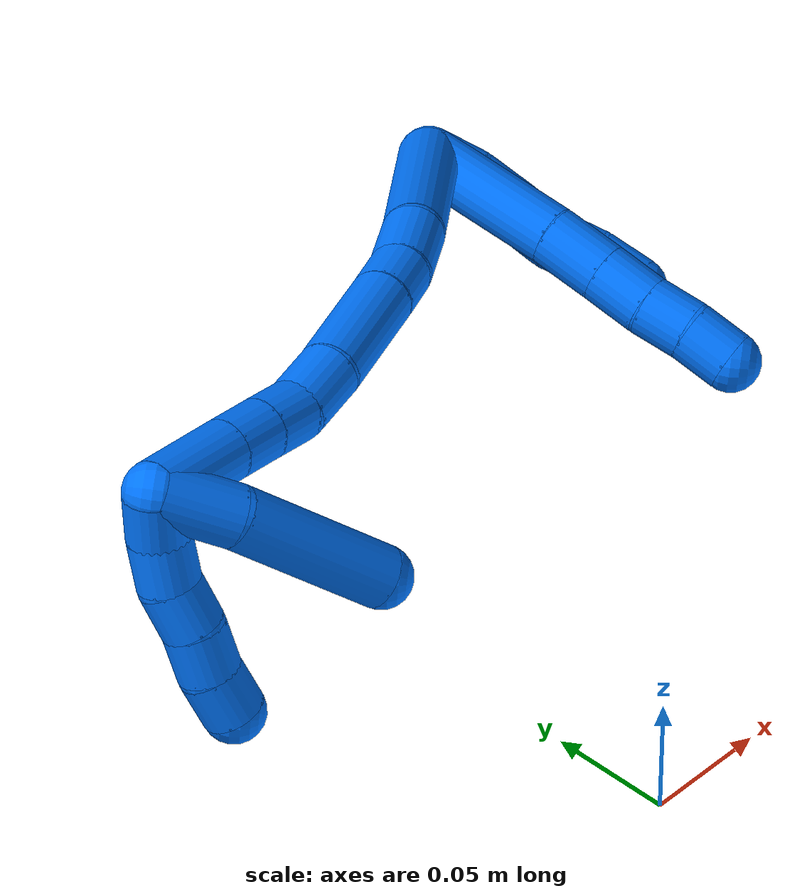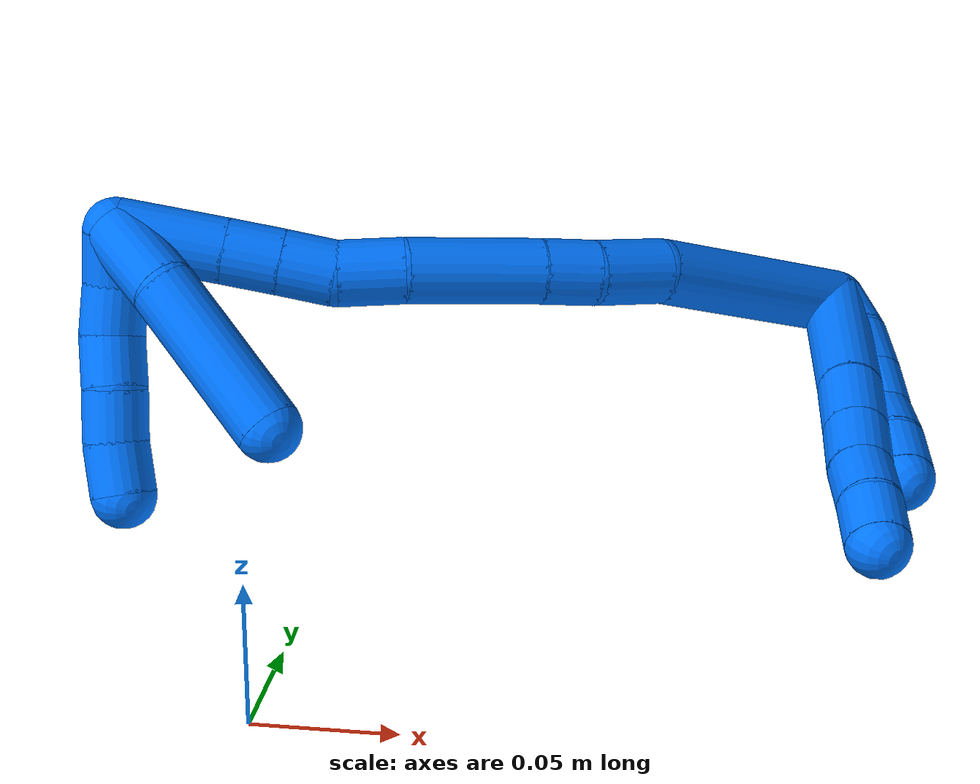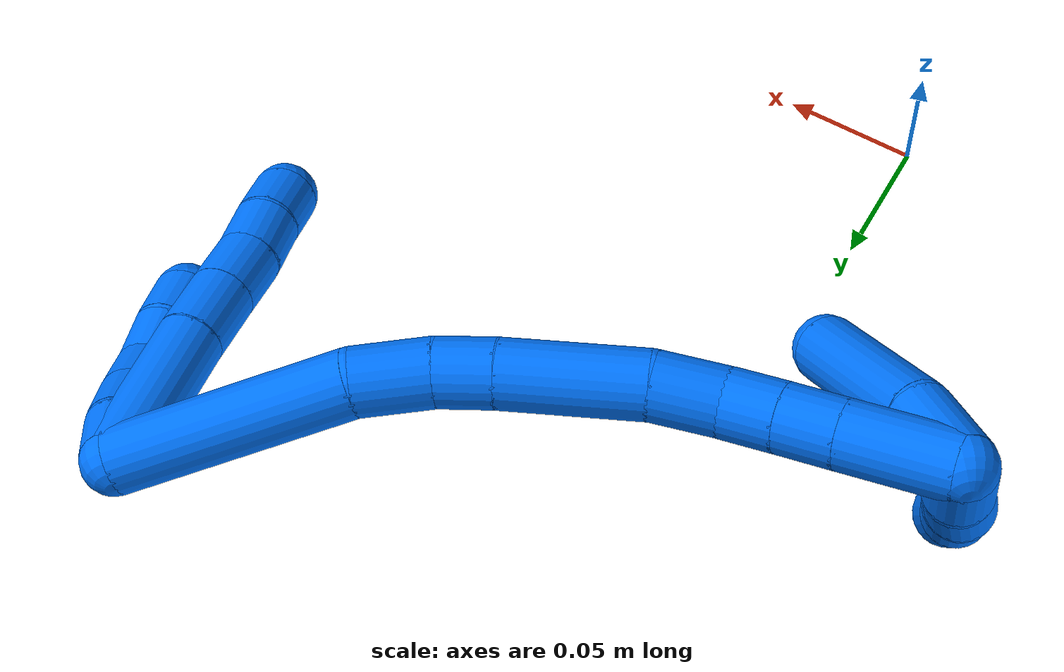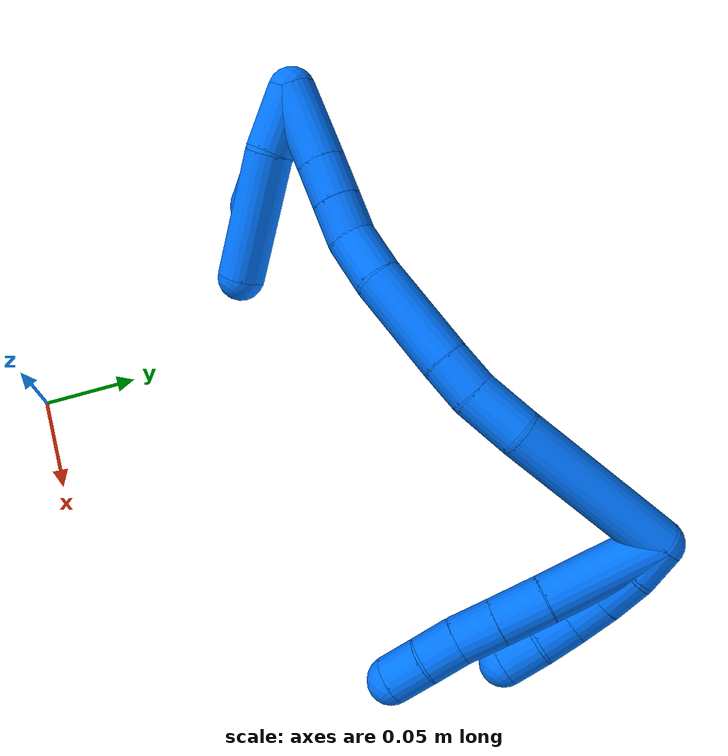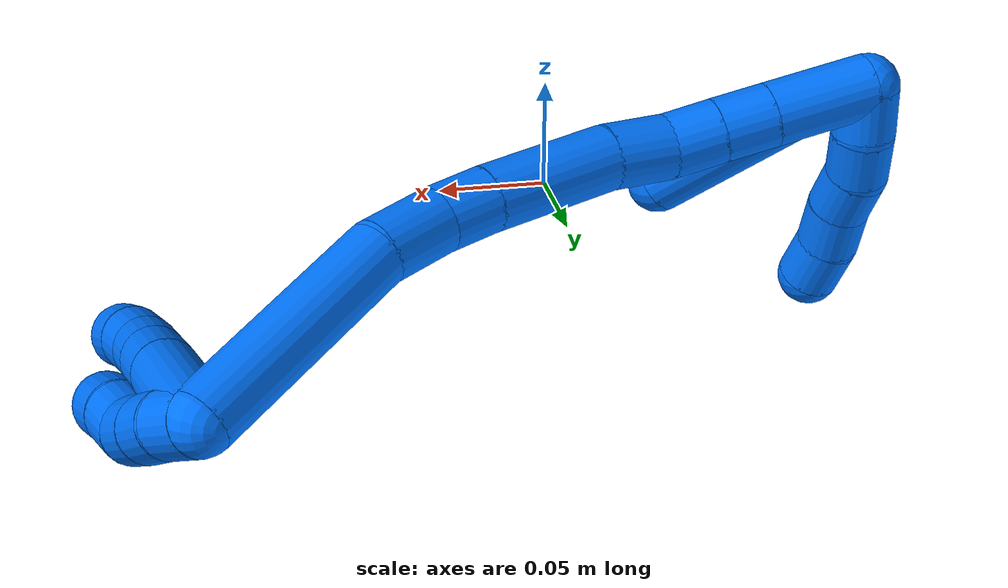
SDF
<sdf version="1.7">
 <world name="default">
  <model name="14">
   <static>0</static>
   <link name="14">
    <collision name="collision-cylinder-e_1_2_8">
     <pose>-0.013223 0.006947 0.026847 -0.253205 -0.444935 0.05757</pose>
     <geometry><cylinder><radius>0.0125</radius><length>0.061444</length></cylinder></geometry>
     <surface>
      <friction><ode><mu>1.16</mu><mu2>1.16</mu2><slip1>0</slip1><slip2>0</slip2></ode></friction>
      <contact><ode><kp>1e+06</kp><kd>1</kd><max_vel>0</max_vel><min_depth>0.001</min_depth></ode></contact>
     </surface>
    </collision>
    <visual name="visual-cylinder-e_1_2_8">
     <pose>-0.013223 0.006947 0.026847 -0.253205 -0.444935 0.05757</pose>
     <geometry><cylinder><radius>0.0125</radius><length>0.061444</length></cylinder></geometry>
     <material><ambient>0 0.462745 1 1</ambient></material>
    </visual>
    <collision name="collision-cylinder-e_2_8_9">
     <pose>-0.032687 0.01634 0.06494 -0.214219 -0.496912 0.054542</pose>
     <geometry><cylinder><radius>0.0125</radius><length>0.026185</length></cylinder></geometry>
     <surface>
      <friction><ode><mu>1.16</mu><mu2>1.16</mu2><slip1>0</slip1><slip2>0</slip2></ode></friction>
      <contact><ode><kp>1e+06</kp><kd>1</kd><max_vel>0</max_vel><min_depth>0.001</min_depth></ode></contact>
     </surface>
    </collision>
    <visual name="visual-cylinder-e_2_8_9">
     <pose>-0.032687 0.01634 0.06494 -0.214219 -0.496912 0.054542</pose>
     <geometry><cylinder><radius>0.0125</radius><length>0.026185</length></cylinder></geometry>
     <material><ambient>0 0.462745 1 1</ambient></material>
    </visual>
    <collision name="collision-cylinder-e_3_9_10">
     <pose>-0.04439 0.020848 0.085703 -0.213303 -0.511106 0.055926</pose>
     <geometry><cylinder><radius>0.0125</radius><length>0.02233</length></cylinder></geometry>
     <surface>
      <friction><ode><mu>1.16</mu><mu2>1.16</mu2><slip1>0</slip1><slip2>0</slip2></ode></friction>
      <contact><ode><kp>1e+06</kp><kd>1</kd><max_vel>0</max_vel><min_depth>0.001</min_depth></ode></contact>
     </surface>
    </collision>
    <visual name="visual-cylinder-e_3_9_10">
     <pose>-0.04439 0.020848 0.085703 -0.213303 -0.511106 0.055926</pose>
     <geometry><cylinder><radius>0.0125</radius><length>0.02233</length></cylinder></geometry>
     <material><ambient>0 0.462745 1 1</ambient></material>
    </visual>
    <collision name="collision-cylinder-e_4_10_11">
     <pose>-0.053895 0.024513 0.104228 -0.1761 -0.416258 0.037282</pose>
     <geometry><cylinder><radius>0.0125</radius><length>0.020007</length></cylinder></geometry>
     <surface>
      <friction><ode><mu>1.16</mu><mu2>1.16</mu2><slip1>0</slip1><slip2>0</slip2></ode></friction>
      <contact><ode><kp>1e+06</kp><kd>1</kd><max_vel>0</max_vel><min_depth>0.001</min_depth></ode></contact>
     </surface>
    </collision>
    <visual name="visual-cylinder-e_4_10_11">
     <pose>-0.053895 0.024513 0.104228 -0.1761 -0.416258 0.037282</pose>
     <geometry><cylinder><radius>0.0125</radius><length>0.020007</length></cylinder></geometry>
     <material><ambient>0 0.462745 1 1</ambient></material>
    </visual>
    <collision name="collision-cylinder-e_5_11_6">
     <pose>-0.062859 0.026739 0.12194 -0.071504 -0.513261 0.018771</pose>
     <geometry><cylinder><radius>0.0125</radius><length>0.020034</length></cylinder></geometry>
     <surface>
      <friction><ode><mu>1.16</mu><mu2>1.16</mu2><slip1>0</slip1><slip2>0</slip2></ode></friction>
      <contact><ode><kp>1e+06</kp><kd>1</kd><max_vel>0</max_vel><min_depth>0.001</min_depth></ode></contact>
     </surface>
    </collision>
    <visual name="visual-cylinder-e_5_11_6">
     <pose>-0.062859 0.026739 0.12194 -0.071504 -0.513261 0.018771</pose>
     <geometry><cylinder><radius>0.0125</radius><length>0.020034</length></cylinder></geometry>
     <material><ambient>0 0.462745 1 1</ambient></material>
    </visual>
    <collision name="collision-cylinder-e_1_2_12">
     <pose>-0.00309 -0.001944 0.00931 0.205894 -0.314094 -0.032716</pose>
     <geometry><cylinder><radius>0.0125</radius><length>0.02</length></cylinder></geometry>
     <surface>
      <friction><ode><mu>1.16</mu><mu2>1.16</mu2><slip1>0</slip1><slip2>0</slip2></ode></friction>
      <contact><ode><kp>1e+06</kp><kd>1</kd><max_vel>0</max_vel><min_depth>0.001</min_depth></ode></contact>
     </surface>
    </collision>
    <visual name="visual-cylinder-e_1_2_12">
     <pose>-0.00309 -0.001944 0.00931 0.205894 -0.314094 -0.032716</pose>
     <geometry><cylinder><radius>0.0125</radius><length>0.02</length></cylinder></geometry>
     <material><ambient>0 0.462745 1 1</ambient></material>
    </visual>
    <collision name="collision-cylinder-e_2_12_13">
     <pose>-0.010832 -0.005397 0.027342 0.171227 -0.483997 -0.042362</pose>
     <geometry><cylinder><radius>0.0125</radius><length>0.02</length></cylinder></geometry>
     <surface>
      <friction><ode><mu>1.16</mu><mu2>1.16</mu2><slip1>0</slip1><slip2>0</slip2></ode></friction>
      <contact><ode><kp>1e+06</kp><kd>1</kd><max_vel>0</max_vel><min_depth>0.001</min_depth></ode></contact>
     </surface>
    </collision>
    <visual name="visual-cylinder-e_2_12_13">
     <pose>-0.010832 -0.005397 0.027342 0.171227 -0.483997 -0.042362</pose>
     <geometry><cylinder><radius>0.0125</radius><length>0.02</length></cylinder></geometry>
     <material><ambient>0 0.462745 1 1</ambient></material>
    </visual>
    <collision name="collision-cylinder-e_3_13_14">
     <pose>-0.020413 -0.007786 0.044721 0.101356 -0.515247 -0.026726</pose>
     <geometry><cylinder><radius>0.0125</radius><length>0.02</length></cylinder></geometry>
     <surface>
      <friction><ode><mu>1.16</mu><mu2>1.16</mu2><slip1>0</slip1><slip2>0</slip2></ode></friction>
      <contact><ode><kp>1e+06</kp><kd>1</kd><max_vel>0</max_vel><min_depth>0.001</min_depth></ode></contact>
     </surface>
    </collision>
    <visual name="visual-cylinder-e_3_13_14">
     <pose>-0.020413 -0.007786 0.044721 0.101356 -0.515247 -0.026726</pose>
     <geometry><cylinder><radius>0.0125</radius><length>0.02</length></cylinder></geometry>
     <material><ambient>0 0.462745 1 1</ambient></material>
    </visual>
    <collision name="collision-cylinder-e_4_14_15">
     <pose>-0.02854 -0.006691 0.062644 -0.209982 -0.325646 0.034619</pose>
     <geometry><cylinder><radius>0.0125</radius><length>0.02</length></cylinder></geometry>
     <surface>
      <friction><ode><mu>1.16</mu><mu2>1.16</mu2><slip1>0</slip1><slip2>0</slip2></ode></friction>
      <contact><ode><kp>1e+06</kp><kd>1</kd><max_vel>0</max_vel><min_depth>0.001</min_depth></ode></contact>
     </surface>
    </collision>
    <visual name="visual-cylinder-e_4_14_15">
     <pose>-0.02854 -0.006691 0.062644 -0.209982 -0.325646 0.034619</pose>
     <geometry><cylinder><radius>0.0125</radius><length>0.02</length></cylinder></geometry>
     <material><ambient>0 0.462745 1 1</ambient></material>
    </visual>
    <collision name="collision-cylinder-e_5_15_5">
     <pose>-0.036152 -0.003678 0.080824 -0.115938 -0.457004 0.026992</pose>
     <geometry><cylinder><radius>0.0125</radius><length>0.02</length></cylinder></geometry>
     <surface>
      <friction><ode><mu>1.16</mu><mu2>1.16</mu2><slip1>0</slip1><slip2>0</slip2></ode></friction>
      <contact><ode><kp>1e+06</kp><kd>1</kd><max_vel>0</max_vel><min_depth>0.001</min_depth></ode></contact>
     </surface>
    </collision>
    <visual name="visual-cylinder-e_5_15_5">
     <pose>-0.036152 -0.003678 0.080824 -0.115938 -0.457004 0.026992</pose>
     <geometry><cylinder><radius>0.0125</radius><length>0.02</length></cylinder></geometry>
     <material><ambient>0 0.462745 1 1</ambient></material>
    </visual>
    <collision name="collision-cylinder-e_1_2_16">
     <pose>-0.019963 0.040064 0.000464 -1.55922 -0.462249 0.457111</pose>
     <geometry><cylinder><radius>0.0125</radius><length>0.089529</length></cylinder></geometry>
     <surface>
      <friction><ode><mu>1.16</mu><mu2>1.16</mu2><slip1>0</slip1><slip2>0</slip2></ode></friction>
      <contact><ode><kp>1e+06</kp><kd>1</kd><max_vel>0</max_vel><min_depth>0.001</min_depth></ode></contact>
     </surface>
    </collision>
    <visual name="visual-cylinder-e_1_2_16">
     <pose>-0.019963 0.040064 0.000464 -1.55922 -0.462249 0.457111</pose>
     <geometry><cylinder><radius>0.0125</radius><length>0.089529</length></cylinder></geometry>
     <material><ambient>0 0.462745 1 1</ambient></material>
    </visual>
    <collision name="collision-cylinder-e_2_16_17">
     <pose>-0.048862 0.091292 -0.000169 -1.66877 -0.672638 0.736147</pose>
     <geometry><cylinder><radius>0.0125</radius><length>0.028682</length></cylinder></geometry>
     <surface>
      <friction><ode><mu>1.16</mu><mu2>1.16</mu2><slip1>0</slip1><slip2>0</slip2></ode></friction>
      <contact><ode><kp>1e+06</kp><kd>1</kd><max_vel>0</max_vel><min_depth>0.001</min_depth></ode></contact>
     </surface>
    </collision>
    <visual name="visual-cylinder-e_2_16_17">
     <pose>-0.048862 0.091292 -0.000169 -1.66877 -0.672638 0.736147</pose>
     <geometry><cylinder><radius>0.0125</radius><length>0.028682</length></cylinder></geometry>
     <material><ambient>0 0.462745 1 1</ambient></material>
    </visual>
    <collision name="collision-cylinder-e_3_17_18">
     <pose>-0.064315 0.110488 -0.003796 -1.87588 -0.658686 0.872113</pose>
     <geometry><cylinder><radius>0.0125</radius><length>0.021298</length></cylinder></geometry>
     <surface>
      <friction><ode><mu>1.16</mu><mu2>1.16</mu2><slip1>0</slip1><slip2>0</slip2></ode></friction>
      <contact><ode><kp>1e+06</kp><kd>1</kd><max_vel>0</max_vel><min_depth>0.001</min_depth></ode></contact>
     </surface>
    </collision>
    <visual name="visual-cylinder-e_3_17_18">
     <pose>-0.064315 0.110488 -0.003796 -1.87588 -0.658686 0.872113</pose>
     <geometry><cylinder><radius>0.0125</radius><length>0.021298</length></cylinder></geometry>
     <material><ambient>0 0.462745 1 1</ambient></material>
    </visual>
    <collision name="collision-cylinder-e_4_18_19">
     <pose>-0.087517 0.137308 -0.013469 -1.93412 -0.692778 0.964349</pose>
     <geometry><cylinder><radius>0.0125</radius><length>0.052244</length></cylinder></geometry>
     <surface>
      <friction><ode><mu>1.16</mu><mu2>1.16</mu2><slip1>0</slip1><slip2>0</slip2></ode></friction>
      <contact><ode><kp>1e+06</kp><kd>1</kd><max_vel>0</max_vel><min_depth>0.001</min_depth></ode></contact>
     </surface>
    </collision>
    <visual name="visual-cylinder-e_4_18_19">
     <pose>-0.087517 0.137308 -0.013469 -1.93412 -0.692778 0.964349</pose>
     <geometry><cylinder><radius>0.0125</radius><length>0.052244</length></cylinder></geometry>
     <material><ambient>0 0.462745 1 1</ambient></material>
    </visual>
    <collision name="collision-cylinder-e_5_19_20">
     <pose>-0.112949 0.164007 -0.025483 -2.12271 -0.755417 1.23514</pose>
     <geometry><cylinder><radius>0.0125</radius><length>0.02552</length></cylinder></geometry>
     <surface>
      <friction><ode><mu>1.16</mu><mu2>1.16</mu2><slip1>0</slip1><slip2>0</slip2></ode></friction>
      <contact><ode><kp>1e+06</kp><kd>1</kd><max_vel>0</max_vel><min_depth>0.001</min_depth></ode></contact>
     </surface>
    </collision>
    <visual name="visual-cylinder-e_5_19_20">
     <pose>-0.112949 0.164007 -0.025483 -2.12271 -0.755417 1.23514</pose>
     <geometry><cylinder><radius>0.0125</radius><length>0.02552</length></cylinder></geometry>
     <material><ambient>0 0.462745 1 1</ambient></material>
    </visual>
    <collision name="collision-cylinder-e_6_20_21">
     <pose>-0.1267 0.179125 -0.035783 -2.21638 -0.50618 0.956867</pose>
     <geometry><cylinder><radius>0.0125</radius><length>0.020637</length></cylinder></geometry>
     <surface>
      <friction><ode><mu>1.16</mu><mu2>1.16</mu2><slip1>0</slip1><slip2>0</slip2></ode></friction>
      <contact><ode><kp>1e+06</kp><kd>1</kd><max_vel>0</max_vel><min_depth>0.001</min_depth></ode></contact>
     </surface>
    </collision>
    <visual name="visual-cylinder-e_6_20_21">
     <pose>-0.1267 0.179125 -0.035783 -2.21638 -0.50618 0.956867</pose>
     <geometry><cylinder><radius>0.0125</radius><length>0.020637</length></cylinder></geometry>
     <material><ambient>0 0.462745 1 1</ambient></material>
    </visual>
    <collision name="collision-cylinder-e_7_21_22">
     <pose>-0.136971 0.193654 -0.046816 -2.22411 -0.519168 0.986746</pose>
     <geometry><cylinder><radius>0.0125</radius><length>0.021235</length></cylinder></geometry>
     <surface>
      <friction><ode><mu>1.16</mu><mu2>1.16</mu2><slip1>0</slip1><slip2>0</slip2></ode></friction>
      <contact><ode><kp>1e+06</kp><kd>1</kd><max_vel>0</max_vel><min_depth>0.001</min_depth></ode></contact>
     </surface>
    </collision>
    <visual name="visual-cylinder-e_7_21_22">
     <pose>-0.136971 0.193654 -0.046816 -2.22411 -0.519168 0.986746</pose>
     <geometry><cylinder><radius>0.0125</radius><length>0.021235</length></cylinder></geometry>
     <material><ambient>0 0.462745 1 1</ambient></material>
    </visual>
    <collision name="collision-cylinder-e_8_22_1">
     <pose>-0.152502 0.215056 -0.063078 -2.21869 -0.526405 0.993175</pose>
     <geometry><cylinder><radius>0.0125</radius><length>0.040853</length></cylinder></geometry>
     <surface>
      <friction><ode><mu>1.16</mu><mu2>1.16</mu2><slip1>0</slip1><slip2>0</slip2></ode></friction>
      <contact><ode><kp>1e+06</kp><kd>1</kd><max_vel>0</max_vel><min_depth>0.001</min_depth></ode></contact>
     </surface>
    </collision>
    <visual name="visual-cylinder-e_8_22_1">
     <pose>-0.152502 0.215056 -0.063078 -2.21869 -0.526405 0.993175</pose>
     <geometry><cylinder><radius>0.0125</radius><length>0.040853</length></cylinder></geometry>
     <material><ambient>0 0.462745 1 1</ambient></material>
    </visual>
    <collision name="collision-cylinder-e_1_1_23">
     <pose>-0.170268 0.222675 -0.072352 1.35979 -0.848611 -0.700357</pose>
     <geometry><cylinder><radius>0.0125</radius><length>0.02</length></cylinder></geometry>
     <surface>
      <friction><ode><mu>1.16</mu><mu2>1.16</mu2><slip1>0</slip1><slip2>0</slip2></ode></friction>
      <contact><ode><kp>1e+06</kp><kd>1</kd><max_vel>0</max_vel><min_depth>0.001</min_depth></ode></contact>
     </surface>
    </collision>
    <visual name="visual-cylinder-e_1_1_23">
     <pose>-0.170268 0.222675 -0.072352 1.35979 -0.848611 -0.700357</pose>
     <geometry><cylinder><radius>0.0125</radius><length>0.02</length></cylinder></geometry>
     <material><ambient>0 0.462745 1 1</ambient></material>
    </visual>
    <collision name="collision-cylinder-e_2_23_24">
     <pose>-0.185851 0.21102 -0.068176 1.07743 -0.940537 -0.58989</pose>
     <geometry><cylinder><radius>0.0125</radius><length>0.02</length></cylinder></geometry>
     <surface>
      <friction><ode><mu>1.16</mu><mu2>1.16</mu2><slip1>0</slip1><slip2>0</slip2></ode></friction>
      <contact><ode><kp>1e+06</kp><kd>1</kd><max_vel>0</max_vel><min_depth>0.001</min_depth></ode></contact>
     </surface>
    </collision>
    <visual name="visual-cylinder-e_2_23_24">
     <pose>-0.185851 0.21102 -0.068176 1.07743 -0.940537 -0.58989</pose>
     <geometry><cylinder><radius>0.0125</radius><length>0.02</length></cylinder></geometry>
     <material><ambient>0 0.462745 1 1</ambient></material>
    </visual>
    <collision name="collision-cylinder-e_3_24_25">
     <pose>-0.201005 0.201069 -0.060163 0.739224 -0.786031 -0.318513</pose>
     <geometry><cylinder><radius>0.0125</radius><length>0.02</length></cylinder></geometry>
     <surface>
      <friction><ode><mu>1.16</mu><mu2>1.16</mu2><slip1>0</slip1><slip2>0</slip2></ode></friction>
      <contact><ode><kp>1e+06</kp><kd>1</kd><max_vel>0</max_vel><min_depth>0.001</min_depth></ode></contact>
     </surface>
    </collision>
    <visual name="visual-cylinder-e_3_24_25">
     <pose>-0.201005 0.201069 -0.060163 0.739224 -0.786031 -0.318513</pose>
     <geometry><cylinder><radius>0.0125</radius><length>0.02</length></cylinder></geometry>
     <material><ambient>0 0.462745 1 1</ambient></material>
    </visual>
    <collision name="collision-cylinder-e_4_25_26">
     <pose>-0.215577 0.190883 -0.05115 0.960911 -0.847507 -0.461812</pose>
     <geometry><cylinder><radius>0.0125</radius><length>0.02</length></cylinder></geometry>
     <surface>
      <friction><ode><mu>1.16</mu><mu2>1.16</mu2><slip1>0</slip1><slip2>0</slip2></ode></friction>
      <contact><ode><kp>1e+06</kp><kd>1</kd><max_vel>0</max_vel><min_depth>0.001</min_depth></ode></contact>
     </surface>
    </collision>
    <visual name="visual-cylinder-e_4_25_26">
     <pose>-0.215577 0.190883 -0.05115 0.960911 -0.847507 -0.461812</pose>
     <geometry><cylinder><radius>0.0125</radius><length>0.02</length></cylinder></geometry>
     <material><ambient>0 0.462745 1 1</ambient></material>
    </visual>
    <collision name="collision-cylinder-e_5_26_4">
     <pose>-0.229552 0.179895 -0.042155 0.818635 -0.704859 -0.316437</pose>
     <geometry><cylinder><radius>0.0125</radius><length>0.02</length></cylinder></geometry>
     <surface>
      <friction><ode><mu>1.16</mu><mu2>1.16</mu2><slip1>0</slip1><slip2>0</slip2></ode></friction>
      <contact><ode><kp>1e+06</kp><kd>1</kd><max_vel>0</max_vel><min_depth>0.001</min_depth></ode></contact>
     </surface>
    </collision>
    <visual name="visual-cylinder-e_5_26_4">
     <pose>-0.229552 0.179895 -0.042155 0.818635 -0.704859 -0.316437</pose>
     <geometry><cylinder><radius>0.0125</radius><length>0.02</length></cylinder></geometry>
     <material><ambient>0 0.462745 1 1</ambient></material>
    </visual>
    <collision name="collision-cylinder-e_1_1_27">
     <pose>-0.164705 0.222579 -0.058939 0.41723 -0.119316 -0.025287</pose>
     <geometry><cylinder><radius>0.0125</radius><length>0.032604</length></cylinder></geometry>
     <surface>
      <friction><ode><mu>1.16</mu><mu2>1.16</mu2><slip1>0</slip1><slip2>0</slip2></ode></friction>
      <contact><ode><kp>1e+06</kp><kd>1</kd><max_vel>0</max_vel><min_depth>0.001</min_depth></ode></contact>
     </surface>
    </collision>
    <visual name="visual-cylinder-e_1_1_27">
     <pose>-0.164705 0.222579 -0.058939 0.41723 -0.119316 -0.025287</pose>
     <geometry><cylinder><radius>0.0125</radius><length>0.032604</length></cylinder></geometry>
     <material><ambient>0 0.462745 1 1</ambient></material>
    </visual>
    <collision name="collision-cylinder-e_2_27_3">
     <pose>-0.172931 0.197224 -0.016888 0.60375 -0.187619 -0.058578</pose>
     <geometry><cylinder><radius>0.0125</radius><length>0.067396</length></cylinder></geometry>
     <surface>
      <friction><ode><mu>1.16</mu><mu2>1.16</mu2><slip1>0</slip1><slip2>0</slip2></ode></friction>
      <contact><ode><kp>1e+06</kp><kd>1</kd><max_vel>0</max_vel><min_depth>0.001</min_depth></ode></contact>
     </surface>
    </collision>
    <visual name="visual-cylinder-e_2_27_3">
     <pose>-0.172931 0.197224 -0.016888 0.60375 -0.187619 -0.058578</pose>
     <geometry><cylinder><radius>0.0125</radius><length>0.067396</length></cylinder></geometry>
     <material><ambient>0 0.462745 1 1</ambient></material>
    </visual>
    <collision name="collision-sphere-3">
     <pose>-0.179216 0.178429 0.010366 0 -0 0</pose>
     <geometry><sphere><radius>0.0125</radius></sphere></geometry>
     <surface>
      <friction><ode><mu>1.16</mu><mu2>1.16</mu2><slip1>0</slip1><slip2>0</slip2></ode></friction>
      <contact><ode><kp>1e+06</kp><kd>1</kd><max_vel>0</max_vel><min_depth>0.001</min_depth></ode></contact>
     </surface>
    </collision>
    <visual name="visual-sphere-3">
     <pose>-0.179216 0.178429 0.010366 0 -0 0</pose>
     <geometry><sphere><radius>0.0125</radius></sphere></geometry>
     <material><ambient>0 0.462745 1 1</ambient></material>
    </visual>
    <collision name="collision-sphere-27">
     <pose>-0.166646 0.21602 -0.044141 0 -0 0</pose>
     <geometry><sphere><radius>0.0125</radius></sphere></geometry>
     <surface>
      <friction><ode><mu>1.16</mu><mu2>1.16</mu2><slip1>0</slip1><slip2>0</slip2></ode></friction>
      <contact><ode><kp>1e+06</kp><kd>1</kd><max_vel>0</max_vel><min_depth>0.001</min_depth></ode></contact>
     </surface>
    </collision>
    <visual name="visual-sphere-27">
     <pose>-0.166646 0.21602 -0.044141 0 -0 0</pose>
     <geometry><sphere><radius>0.0125</radius></sphere></geometry>
     <material><ambient>0 0.462745 1 1</ambient></material>
    </visual>
    <collision name="collision-sphere-4">
     <pose>-0.236032 0.174333 -0.036951 0 -0 0</pose>
     <geometry><sphere><radius>0.0125</radius></sphere></geometry>
     <surface>
      <friction><ode><mu>1.16</mu><mu2>1.16</mu2><slip1>0</slip1><slip2>0</slip2></ode></friction>
      <contact><ode><kp>1e+06</kp><kd>1</kd><max_vel>0</max_vel><min_depth>0.001</min_depth></ode></contact>
     </surface>
    </collision>
    <visual name="visual-sphere-4">
     <pose>-0.236032 0.174333 -0.036951 0 -0 0</pose>
     <geometry><sphere><radius>0.0125</radius></sphere></geometry>
     <material><ambient>0 0.462745 1 1</ambient></material>
    </visual>
    <collision name="collision-sphere-26">
     <pose>-0.223073 0.185457 -0.047359 0 -0 0</pose>
     <geometry><sphere><radius>0.0125</radius></sphere></geometry>
     <surface>
      <friction><ode><mu>1.16</mu><mu2>1.16</mu2><slip1>0</slip1><slip2>0</slip2></ode></friction>
      <contact><ode><kp>1e+06</kp><kd>1</kd><max_vel>0</max_vel><min_depth>0.001</min_depth></ode></contact>
     </surface>
    </collision>
    <visual name="visual-sphere-26">
     <pose>-0.223073 0.185457 -0.047359 0 -0 0</pose>
     <geometry><sphere><radius>0.0125</radius></sphere></geometry>
     <material><ambient>0 0.462745 1 1</ambient></material>
    </visual>
    <collision name="collision-sphere-25">
     <pose>-0.208081 0.196308 -0.054941 0 -0 0</pose>
     <geometry><sphere><radius>0.0125</radius></sphere></geometry>
     <surface>
      <friction><ode><mu>1.16</mu><mu2>1.16</mu2><slip1>0</slip1><slip2>0</slip2></ode></friction>
      <contact><ode><kp>1e+06</kp><kd>1</kd><max_vel>0</max_vel><min_depth>0.001</min_depth></ode></contact>
     </surface>
    </collision>
    <visual name="visual-sphere-25">
     <pose>-0.208081 0.196308 -0.054941 0 -0 0</pose>
     <geometry><sphere><radius>0.0125</radius></sphere></geometry>
     <material><ambient>0 0.462745 1 1</ambient></material>
    </visual>
    <collision name="collision-sphere-24">
     <pose>-0.193929 0.20583 -0.065385 0 -0 0</pose>
     <geometry><sphere><radius>0.0125</radius></sphere></geometry>
     <surface>
      <friction><ode><mu>1.16</mu><mu2>1.16</mu2><slip1>0</slip1><slip2>0</slip2></ode></friction>
      <contact><ode><kp>1e+06</kp><kd>1</kd><max_vel>0</max_vel><min_depth>0.001</min_depth></ode></contact>
     </surface>
    </collision>
    <visual name="visual-sphere-24">
     <pose>-0.193929 0.20583 -0.065385 0 -0 0</pose>
     <geometry><sphere><radius>0.0125</radius></sphere></geometry>
     <material><ambient>0 0.462745 1 1</ambient></material>
    </visual>
    <collision name="collision-sphere-23">
     <pose>-0.177772 0.216211 -0.070967 0 -0 0</pose>
     <geometry><sphere><radius>0.0125</radius></sphere></geometry>
     <surface>
      <friction><ode><mu>1.16</mu><mu2>1.16</mu2><slip1>0</slip1><slip2>0</slip2></ode></friction>
      <contact><ode><kp>1e+06</kp><kd>1</kd><max_vel>0</max_vel><min_depth>0.001</min_depth></ode></contact>
     </surface>
    </collision>
    <visual name="visual-sphere-23">
     <pose>-0.177772 0.216211 -0.070967 0 -0 0</pose>
     <geometry><sphere><radius>0.0125</radius></sphere></geometry>
     <material><ambient>0 0.462745 1 1</ambient></material>
    </visual>
    <collision name="collision-sphere-1">
     <pose>-0.162765 0.229138 -0.073736 0 -0 0</pose>
     <geometry><sphere><radius>0.0125</radius></sphere></geometry>
     <surface>
      <friction><ode><mu>1.16</mu><mu2>1.16</mu2><slip1>0</slip1><slip2>0</slip2></ode></friction>
      <contact><ode><kp>1e+06</kp><kd>1</kd><max_vel>0</max_vel><min_depth>0.001</min_depth></ode></contact>
     </surface>
    </collision>
    <visual name="visual-sphere-1">
     <pose>-0.162765 0.229138 -0.073736 0 -0 0</pose>
     <geometry><sphere><radius>0.0125</radius></sphere></geometry>
     <material><ambient>0 0.462745 1 1</ambient></material>
    </visual>
    <collision name="collision-sphere-22">
     <pose>-0.142239 0.200974 -0.052419 0 -0 0</pose>
     <geometry><sphere><radius>0.0125</radius></sphere></geometry>
     <surface>
      <friction><ode><mu>1.16</mu><mu2>1.16</mu2><slip1>0</slip1><slip2>0</slip2></ode></friction>
      <contact><ode><kp>1e+06</kp><kd>1</kd><max_vel>0</max_vel><min_depth>0.001</min_depth></ode></contact>
     </surface>
    </collision>
    <visual name="visual-sphere-22">
     <pose>-0.142239 0.200974 -0.052419 0 -0 0</pose>
     <geometry><sphere><radius>0.0125</radius></sphere></geometry>
     <material><ambient>0 0.462745 1 1</ambient></material>
    </visual>
    <collision name="collision-sphere-21">
     <pose>-0.131703 0.186333 -0.041213 0 -0 0</pose>
     <geometry><sphere><radius>0.0125</radius></sphere></geometry>
     <surface>
      <friction><ode><mu>1.16</mu><mu2>1.16</mu2><slip1>0</slip1><slip2>0</slip2></ode></friction>
      <contact><ode><kp>1e+06</kp><kd>1</kd><max_vel>0</max_vel><min_depth>0.001</min_depth></ode></contact>
     </surface>
    </collision>
    <visual name="visual-sphere-21">
     <pose>-0.131703 0.186333 -0.041213 0 -0 0</pose>
     <geometry><sphere><radius>0.0125</radius></sphere></geometry>
     <material><ambient>0 0.462745 1 1</ambient></material>
    </visual>
    <collision name="collision-sphere-6">
     <pose>-0.067778 0.027362 0.130644 0 -0 0</pose>
     <geometry><sphere><radius>0.0125</radius></sphere></geometry>
     <surface>
      <friction><ode><mu>1.16</mu><mu2>1.16</mu2><slip1>0</slip1><slip2>0</slip2></ode></friction>
      <contact><ode><kp>1e+06</kp><kd>1</kd><max_vel>0</max_vel><min_depth>0.001</min_depth></ode></contact>
     </surface>
    </collision>
    <visual name="visual-sphere-6">
     <pose>-0.067778 0.027362 0.130644 0 -0 0</pose>
     <geometry><sphere><radius>0.0125</radius></sphere></geometry>
     <material><ambient>0 0.462745 1 1</ambient></material>
    </visual>
    <collision name="collision-sphere-11">
     <pose>-0.05794 0.026115 0.113235 0 -0 0</pose>
     <geometry><sphere><radius>0.0125</radius></sphere></geometry>
     <surface>
      <friction><ode><mu>1.16</mu><mu2>1.16</mu2><slip1>0</slip1><slip2>0</slip2></ode></friction>
      <contact><ode><kp>1e+06</kp><kd>1</kd><max_vel>0</max_vel><min_depth>0.001</min_depth></ode></contact>
     </surface>
    </collision>
    <visual name="visual-sphere-11">
     <pose>-0.05794 0.026115 0.113235 0 -0 0</pose>
     <geometry><sphere><radius>0.0125</radius></sphere></geometry>
     <material><ambient>0 0.462745 1 1</ambient></material>
    </visual>
    <collision name="collision-sphere-10">
     <pose>-0.049851 0.02291 0.09522 0 -0 0</pose>
     <geometry><sphere><radius>0.0125</radius></sphere></geometry>
     <surface>
      <friction><ode><mu>1.16</mu><mu2>1.16</mu2><slip1>0</slip1><slip2>0</slip2></ode></friction>
      <contact><ode><kp>1e+06</kp><kd>1</kd><max_vel>0</max_vel><min_depth>0.001</min_depth></ode></contact>
     </surface>
    </collision>
    <visual name="visual-sphere-10">
     <pose>-0.049851 0.02291 0.09522 0 -0 0</pose>
     <geometry><sphere><radius>0.0125</radius></sphere></geometry>
     <material><ambient>0 0.462745 1 1</ambient></material>
    </visual>
    <collision name="collision-sphere-9">
     <pose>-0.038928 0.018787 0.076186 0 -0 0</pose>
     <geometry><sphere><radius>0.0125</radius></sphere></geometry>
     <surface>
      <friction><ode><mu>1.16</mu><mu2>1.16</mu2><slip1>0</slip1><slip2>0</slip2></ode></friction>
      <contact><ode><kp>1e+06</kp><kd>1</kd><max_vel>0</max_vel><min_depth>0.001</min_depth></ode></contact>
     </surface>
    </collision>
    <visual name="visual-sphere-9">
     <pose>-0.038928 0.018787 0.076186 0 -0 0</pose>
     <geometry><sphere><radius>0.0125</radius></sphere></geometry>
     <material><ambient>0 0.462745 1 1</ambient></material>
    </visual>
    <collision name="collision-sphere-2">
     <geometry><sphere><radius>0.0125</radius></sphere></geometry>
     <surface>
      <friction><ode><mu>1.16</mu><mu2>1.16</mu2><slip1>0</slip1><slip2>0</slip2></ode></friction>
      <contact><ode><kp>1e+06</kp><kd>1</kd><max_vel>0</max_vel><min_depth>0.001</min_depth></ode></contact>
     </surface>
    </collision>
    <visual name="visual-sphere-2">
     <geometry><sphere><radius>0.0125</radius></sphere></geometry>
     <material><ambient>0 0.462745 1 1</ambient></material>
    </visual>
    <collision name="collision-sphere-19">
     <pose>-0.104201 0.156097 -0.020612 0 -0 0</pose>
     <geometry><sphere><radius>0.0125</radius></sphere></geometry>
     <surface>
      <friction><ode><mu>1.16</mu><mu2>1.16</mu2><slip1>0</slip1><slip2>0</slip2></ode></friction>
      <contact><ode><kp>1e+06</kp><kd>1</kd><max_vel>0</max_vel><min_depth>0.001</min_depth></ode></contact>
     </surface>
    </collision>
    <visual name="visual-sphere-19">
     <pose>-0.104201 0.156097 -0.020612 0 -0 0</pose>
     <geometry><sphere><radius>0.0125</radius></sphere></geometry>
     <material><ambient>0 0.462745 1 1</ambient></material>
    </visual>
    <collision name="collision-sphere-8">
     <pose>-0.026446 0.013894 0.053693 0 -0 0</pose>
     <geometry><sphere><radius>0.0125</radius></sphere></geometry>
     <surface>
      <friction><ode><mu>1.16</mu><mu2>1.16</mu2><slip1>0</slip1><slip2>0</slip2></ode></friction>
      <contact><ode><kp>1e+06</kp><kd>1</kd><max_vel>0</max_vel><min_depth>0.001</min_depth></ode></contact>
     </surface>
    </collision>
    <visual name="visual-sphere-8">
     <pose>-0.026446 0.013894 0.053693 0 -0 0</pose>
     <geometry><sphere><radius>0.0125</radius></sphere></geometry>
     <material><ambient>0 0.462745 1 1</ambient></material>
    </visual>
    <collision name="collision-sphere-12">
     <pose>-0.006179 -0.003889 0.01862 0 -0 0</pose>
     <geometry><sphere><radius>0.0125</radius></sphere></geometry>
     <surface>
      <friction><ode><mu>1.16</mu><mu2>1.16</mu2><slip1>0</slip1><slip2>0</slip2></ode></friction>
      <contact><ode><kp>1e+06</kp><kd>1</kd><max_vel>0</max_vel><min_depth>0.001</min_depth></ode></contact>
     </surface>
    </collision>
    <visual name="visual-sphere-12">
     <pose>-0.006179 -0.003889 0.01862 0 -0 0</pose>
     <geometry><sphere><radius>0.0125</radius></sphere></geometry>
     <material><ambient>0 0.462745 1 1</ambient></material>
    </visual>
    <collision name="collision-sphere-13">
     <pose>-0.015486 -0.006905 0.036064 0 -0 0</pose>
     <geometry><sphere><radius>0.0125</radius></sphere></geometry>
     <surface>
      <friction><ode><mu>1.16</mu><mu2>1.16</mu2><slip1>0</slip1><slip2>0</slip2></ode></friction>
      <contact><ode><kp>1e+06</kp><kd>1</kd><max_vel>0</max_vel><min_depth>0.001</min_depth></ode></contact>
     </surface>
    </collision>
    <visual name="visual-sphere-13">
     <pose>-0.015486 -0.006905 0.036064 0 -0 0</pose>
     <geometry><sphere><radius>0.0125</radius></sphere></geometry>
     <material><ambient>0 0.462745 1 1</ambient></material>
    </visual>
    <collision name="collision-sphere-14">
     <pose>-0.025341 -0.008666 0.053378 0 -0 0</pose>
     <geometry><sphere><radius>0.0125</radius></sphere></geometry>
     <surface>
      <friction><ode><mu>1.16</mu><mu2>1.16</mu2><slip1>0</slip1><slip2>0</slip2></ode></friction>
      <contact><ode><kp>1e+06</kp><kd>1</kd><max_vel>0</max_vel><min_depth>0.001</min_depth></ode></contact>
     </surface>
    </collision>
    <visual name="visual-sphere-14">
     <pose>-0.025341 -0.008666 0.053378 0 -0 0</pose>
     <geometry><sphere><radius>0.0125</radius></sphere></geometry>
     <material><ambient>0 0.462745 1 1</ambient></material>
    </visual>
    <collision name="collision-sphere-15">
     <pose>-0.031739 -0.004716 0.071911 0 -0 0</pose>
     <geometry><sphere><radius>0.0125</radius></sphere></geometry>
     <surface>
      <friction><ode><mu>1.16</mu><mu2>1.16</mu2><slip1>0</slip1><slip2>0</slip2></ode></friction>
      <contact><ode><kp>1e+06</kp><kd>1</kd><max_vel>0</max_vel><min_depth>0.001</min_depth></ode></contact>
     </surface>
    </collision>
    <visual name="visual-sphere-15">
     <pose>-0.031739 -0.004716 0.071911 0 -0 0</pose>
     <geometry><sphere><radius>0.0125</radius></sphere></geometry>
     <material><ambient>0 0.462745 1 1</ambient></material>
    </visual>
    <collision name="collision-sphere-5">
     <pose>-0.040564 -0.00264 0.089738 0 -0 0</pose>
     <geometry><sphere><radius>0.0125</radius></sphere></geometry>
     <surface>
      <friction><ode><mu>1.16</mu><mu2>1.16</mu2><slip1>0</slip1><slip2>0</slip2></ode></friction>
      <contact><ode><kp>1e+06</kp><kd>1</kd><max_vel>0</max_vel><min_depth>0.001</min_depth></ode></contact>
     </surface>
    </collision>
    <visual name="visual-sphere-5">
     <pose>-0.040564 -0.00264 0.089738 0 -0 0</pose>
     <geometry><sphere><radius>0.0125</radius></sphere></geometry>
     <material><ambient>0 0.462745 1 1</ambient></material>
    </visual>
    <collision name="collision-sphere-16">
     <pose>-0.039927 0.080128 0.000928 0 -0 0</pose>
     <geometry><sphere><radius>0.0125</radius></sphere></geometry>
     <surface>
      <friction><ode><mu>1.16</mu><mu2>1.16</mu2><slip1>0</slip1><slip2>0</slip2></ode></friction>
      <contact><ode><kp>1e+06</kp><kd>1</kd><max_vel>0</max_vel><min_depth>0.001</min_depth></ode></contact>
     </surface>
    </collision>
    <visual name="visual-sphere-16">
     <pose>-0.039927 0.080128 0.000928 0 -0 0</pose>
     <geometry><sphere><radius>0.0125</radius></sphere></geometry>
     <material><ambient>0 0.462745 1 1</ambient></material>
    </visual>
    <collision name="collision-sphere-17">
     <pose>-0.057797 0.102455 -0.001267 0 -0 0</pose>
     <geometry><sphere><radius>0.0125</radius></sphere></geometry>
     <surface>
      <friction><ode><mu>1.16</mu><mu2>1.16</mu2><slip1>0</slip1><slip2>0</slip2></ode></friction>
      <contact><ode><kp>1e+06</kp><kd>1</kd><max_vel>0</max_vel><min_depth>0.001</min_depth></ode></contact>
     </surface>
    </collision>
    <visual name="visual-sphere-17">
     <pose>-0.057797 0.102455 -0.001267 0 -0 0</pose>
     <geometry><sphere><radius>0.0125</radius></sphere></geometry>
     <material><ambient>0 0.462745 1 1</ambient></material>
    </visual>
    <collision name="collision-sphere-18">
     <pose>-0.070833 0.11852 -0.006326 0 -0 0</pose>
     <geometry><sphere><radius>0.0125</radius></sphere></geometry>
     <surface>
      <friction><ode><mu>1.16</mu><mu2>1.16</mu2><slip1>0</slip1><slip2>0</slip2></ode></friction>
      <contact><ode><kp>1e+06</kp><kd>1</kd><max_vel>0</max_vel><min_depth>0.001</min_depth></ode></contact>
     </surface>
    </collision>
    <visual name="visual-sphere-18">
     <pose>-0.070833 0.11852 -0.006326 0 -0 0</pose>
     <geometry><sphere><radius>0.0125</radius></sphere></geometry>
     <material><ambient>0 0.462745 1 1</ambient></material>
    </visual>
    <collision name="collision-sphere-20">
     <pose>-0.121697 0.171917 -0.030353 0 -0 0</pose>
     <geometry><sphere><radius>0.0125</radius></sphere></geometry>
     <surface>
      <friction><ode><mu>1.16</mu><mu2>1.16</mu2><slip1>0</slip1><slip2>0</slip2></ode></friction>
      <contact><ode><kp>1e+06</kp><kd>1</kd><max_vel>0</max_vel><min_depth>0.001</min_depth></ode></contact>
     </surface>
    </collision>
    <visual name="visual-sphere-20">
     <pose>-0.121697 0.171917 -0.030353 0 -0 0</pose>
     <geometry><sphere><radius>0.0125</radius></sphere></geometry>
     <material><ambient>0 0.462745 1 1</ambient></material>
    </visual>
    <inertial>
     <pose>-0.090419 0.105345 -0.000478 0 -0 0</pose>
     <mass>0.75</mass>
     <inertia>
      <ixx>0.000149</ixx>
      <ixy>0</ixy>
      <ixz>0</ixz>
      <iyy>0.000142</iyy>
      <iyz>0</iyz>
      <izz>3.1e-05</izz>
     </inertia>
    </inertial>
   </link>
   <pose>0.174012 0.284377 0.051088 1.69476 -0.776084 0.564595</pose>
  </model>
 </world>
</sdf>
